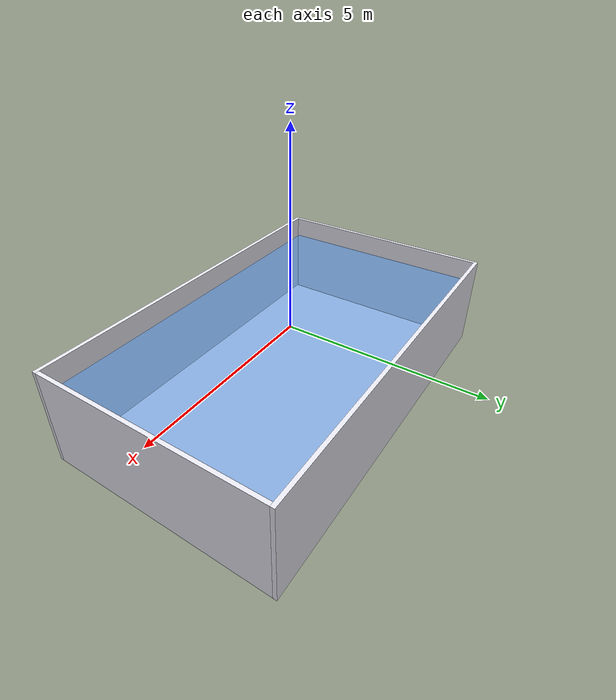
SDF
<?xml version="1.0" ?>
<sdf version="1.9">

    <model name="pool_environment">
      <static>true</static>

      <!-- Pool floor -->
      <link name="pool_floor">
        <pose>0 0 -2.05 0 0 0</pose>
        <collision name="collision">
          <geometry>
            <box>
              <size>10 6 0.1</size>
            </box>
          </geometry>
        </collision>
        <visual name="visual">
          <geometry>
            <box>
              <size>10 6 0.1</size>
            </box>
          </geometry>
          <material>
            <ambient>0.7 0.7 0.75 1</ambient>
            <diffuse>0.8 0.8 0.85 1</diffuse>
          </material>
        </visual>
      </link>

      <!-- Pool wall +X -->
      <link name="wall_px">
        <pose>5.05 0 -0.75 0 0 0</pose>
        <collision name="collision">
          <geometry>
            <box>
              <size>0.1 6 2.6</size>
            </box>
          </geometry>
        </collision>
        <visual name="visual">
          <geometry>
            <box>
              <size>0.1 6 2.6</size>
            </box>
          </geometry>
          <material>
            <ambient>0.85 0.85 0.9 1</ambient>
            <diffuse>0.92 0.92 0.96 1</diffuse>
          </material>
        </visual>
      </link>

      <!-- Pool wall -X -->
      <link name="wall_nx">
        <pose>-5.05 0 -0.75 0 0 0</pose>
        <collision name="collision">
          <geometry>
            <box>
              <size>0.1 6 2.6</size>
            </box>
          </geometry>
        </collision>
        <visual name="visual">
          <geometry>
            <box>
              <size>0.1 6 2.6</size>
            </box>
          </geometry>
          <material>
            <ambient>0.85 0.85 0.9 1</ambient>
            <diffuse>0.92 0.92 0.96 1</diffuse>
          </material>
        </visual>
      </link>

      <!-- Pool wall +Y -->
      <link name="wall_py">
        <pose>0 3.05 -0.75 0 0 0</pose>
        <collision name="collision">
          <geometry>
            <box>
              <size>10.2 0.1 2.6</size>
            </box>
          </geometry>
        </collision>
        <visual name="visual">
          <geometry>
            <box>
              <size>10.2 0.1 2.6</size>
            </box>
          </geometry>
          <material>
            <ambient>0.85 0.85 0.9 1</ambient>
            <diffuse>0.92 0.92 0.96 1</diffuse>
          </material>
        </visual>
      </link>

      <!-- Pool wall -Y -->
      <link name="wall_ny">
        <pose>0 -3.05 -0.75 0 0 0</pose>
        <collision name="collision">
          <geometry>
            <box>
              <size>10.2 0.1 2.6</size>
            </box>
          </geometry>
        </collision>
        <visual name="visual">
          <geometry>
            <box>
              <size>10.2 0.1 2.6</size>
            </box>
          </geometry>
          <material>
            <ambient>0.85 0.85 0.9 1</ambient>
            <diffuse>0.92 0.92 0.96 1</diffuse>
          </material>
        </visual>
      </link>

      <!-- Water volume visual -->
      <link name="pool_water_visual">
        <pose>0 0 -1 0 0 0</pose>
        <visual name="visual">
          <geometry>
            <box>
              <size>9.8 5.8 2.0</size>
            </box>
          </geometry>
          <material>
            <ambient>0.0 0.4 0.8 0.35</ambient>
            <diffuse>0.0 0.5 0.9 0.35</diffuse>
            <specular>0.2 0.2 0.2 0.35</specular>
          </material>
        </visual>
      </link>

      <!-- Water surface -->
      <link name="water_surface">
        <pose>0 0 0 0 0 0</pose>
        <visual name="visual">
          <geometry>
            <box>
              <size>9.8 5.8 0.02</size>
            </box>
          </geometry>
          <material>
            <ambient>0.3 0.6 0.95 0.5</ambient>
            <diffuse>0.3 0.6 0.95 0.5</diffuse>
          </material>
        </visual>
      </link>

    </model>

</sdf>
